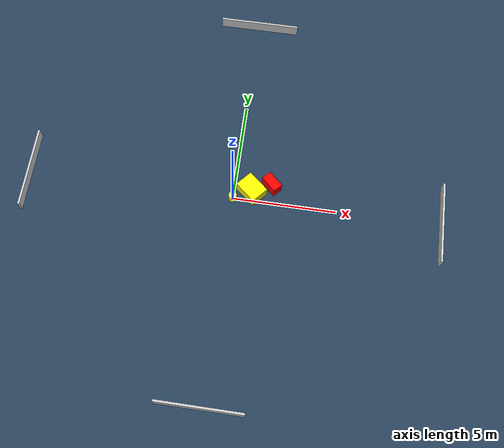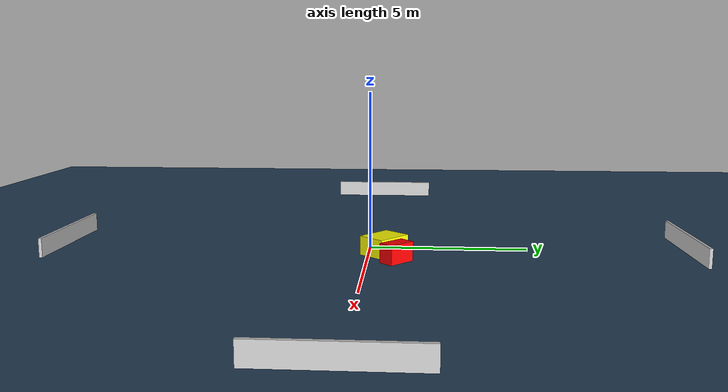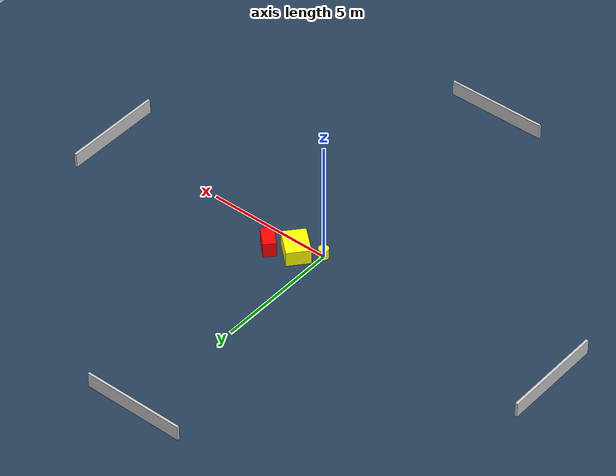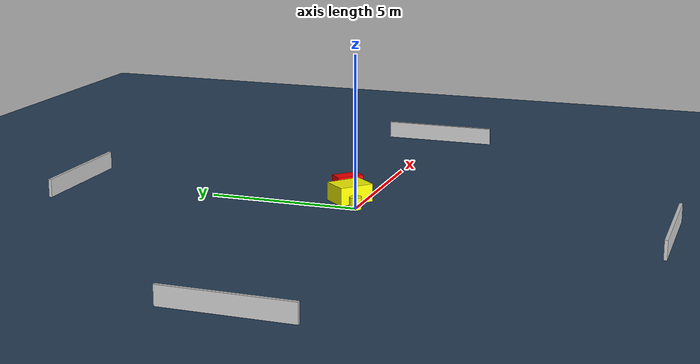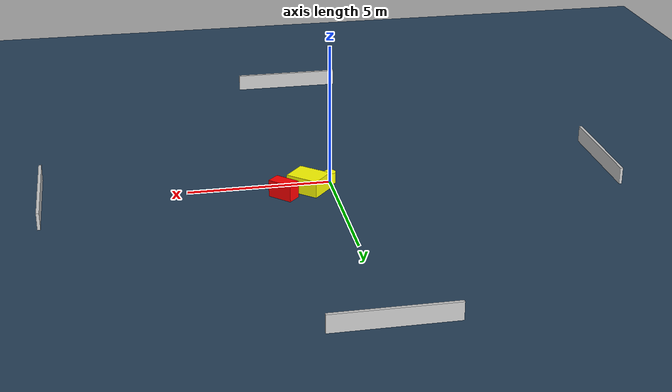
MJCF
<?xml version="1.0" ?>
<mujoco model="generated_environment">
  <option timestep="0.01" integrator="RK4" cone="elliptic"/>
  <default>
    <geom density="1"/>
  </default>
  <asset>
    <texture builtin="gradient" height="3072" name="skybox" rgb1="0.3 0.5 0.7" rgb2="0 0 0" type="skybox" width="512"/>
    <texture builtin="checker" height="300" name="groundplane" rgb1="0.2 0.3 0.4" rgb2="0.1 0.2 0.3" type="2d" width="300"/>
    <material name="groundplane" reflectance="0.2" texrepeat="5 5" texture="groundplane"/>
  </asset>
  <worldbody>
    <light dir="0 0 -1" directional="true" pos="0 0 1.5"/>
    <geom condim="3" friction="0.5 0.005 0.001" material="groundplane" name="floor" pos="0 0 0" size="0 0 0.05" type="plane"/>
    <body name="walls">
      <geom name="wall_1" condim="4" pos="-10.0 0.0 0.3" rgba="0.800000011920929 0.800000011920929 0.800000011920929 1.0" size="0.05 2.0 0.3" type="box"/>
      <geom name="wall_2" condim="4" pos="10.0 0.0 0.3" rgba="0.800000011920929 0.800000011920929 0.800000011920929 1.0" size="0.05 2.0 0.3" type="box"/>
      <geom name="wall_3" condim="4" pos="0.0 -10.0 0.3" rgba="0.800000011920929 0.800000011920929 0.800000011920929 1.0" size="2.0 0.05 0.3" type="box"/>
      <geom name="wall_4" condim="4" pos="0.0 10.0 0.3" rgba="0.800000011920929 0.800000011920929 0.800000011920929 1.0" size="2.0 0.05 0.3" type="box"/>
    </body>
    <body name="robot">
      <joint name="joint_x" type="slide" pos="0 0 0" axis="1 0 0"/>
      <joint name="joint_y" type="slide" pos="0 0 0" axis="0 1 0"/>
      <geom name="robot" type="cylinder" pos="0.0 0.0 0.2" size="0.2 0.2 0.0" mass="5.0" friction="1.0 0.005 0.0001" condim="4" rgba="1.0 1.0 0.0 1.0"/>
    </body>
    <body name="obstacle_1_movable">
      <geom name="obstacle_1_movable" condim="4" pos="0.854297740865801 0.4881245729746855 0.3" euler="0 0 229.11358465597095" friction="0.0 0.005 0.001" rgba="1.0 1.0 0.0 1.0" size="0.4621910971599485 0.5935226399302028 0.3" type="box" mass="0.1"/>
      <joint type="free"/>
    </body>
    <body name="obstacle_2_static">
      <geom name="obstacle_2_static" condim="4" pos="1.784978827388908 0.8996394526869286 0.3" euler="0 0 136.17057358741823" friction="0.0 0.005 0.001" rgba="1.0 0.0 0.0 1.0" size="0.4486661234921381 0.24994491073614206 0.3" type="box"/>
    </body>
  </worldbody>
  <actuator>
    <motor name="actuator_x" joint="joint_x" gear="1" ctrlrange="-1 1"/>
    <motor name="actuator_y" joint="joint_y" gear="1" ctrlrange="-1 1"/>
  </actuator>
</mujoco>
